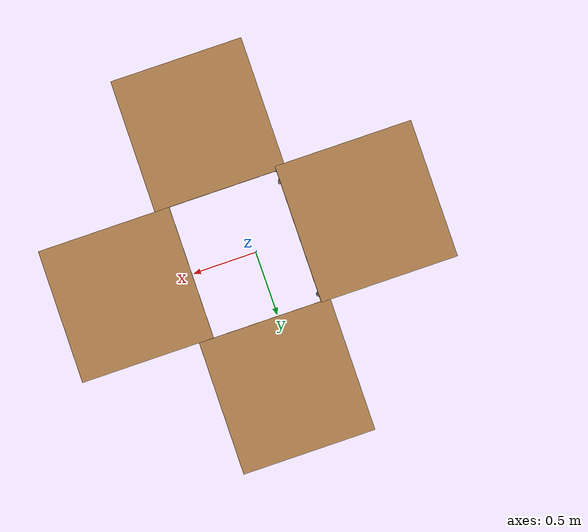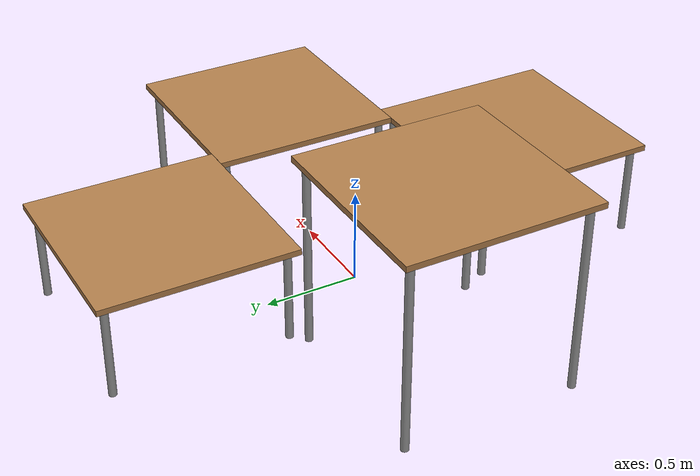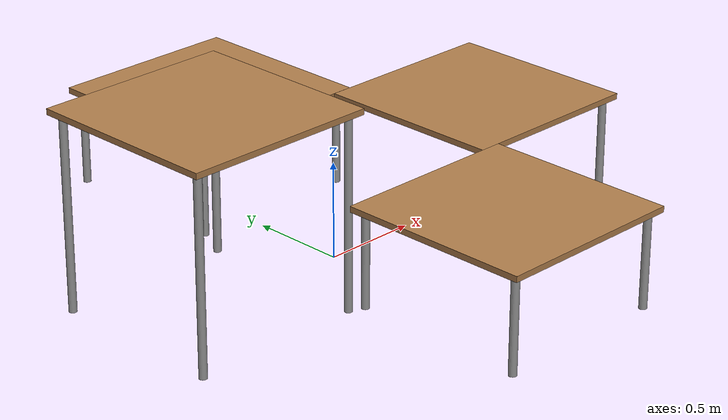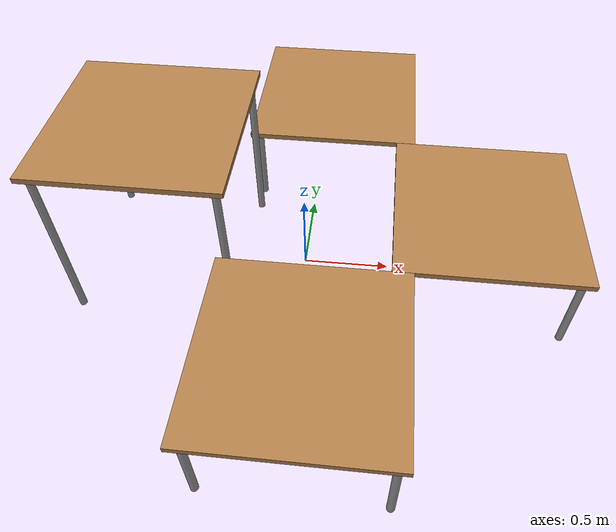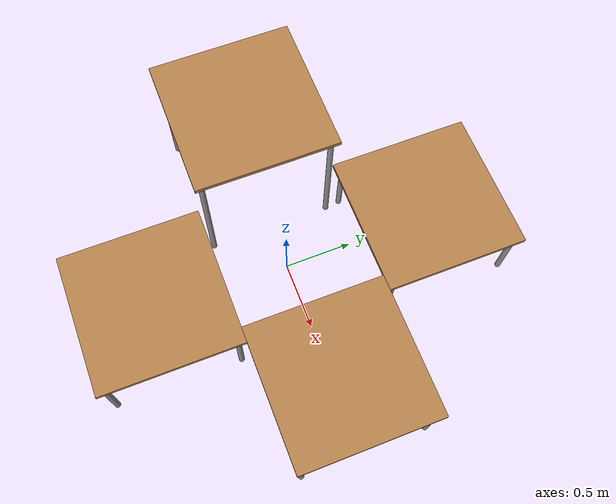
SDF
<sdf version="1.6">
 <world name="default">
  <plugin name="ros_link_attacher_plugin" filename="libgazebo_ros_link_attacher.so"/>
  <gravity>0 0 -9.8</gravity>
  <physics default="0" name="default_physics" type="ode">
   <max_step_size>0.001</max_step_size>
   <real_time_factor>1</real_time_factor>
   <real_time_update_rate>1000</real_time_update_rate>
  </physics>
  <model name="table">
   <include><uri>model://table</uri><pose>-0.8 0 0 0 0 1.5708</pose><static>true</static></include>
  </model>
  <model name="table_red_">
   <include><uri>model://custom_table</uri><pose>0.11 1 -0.2 0 0 0</pose><static>true</static></include>
  </model>
  <model name="table_blue_">
   <include><uri>model://custom_table</uri><pose>0.11 -1 -0.2 0 0 0</pose><static>true</static></include>
  </model>
  <model name="table_green_">
   <include><uri>model://custom_table</uri><pose>1 0 -0.2 0 0 -1.57</pose><static>true</static></include>
  </model>
  <light name="Warehouse_CeilingLight_003" type="point">
   <pose>0 0 5 0 0 0</pose>
   <diffuse>0.5 0.5 0.5 1</diffuse>
   <specular>0.2 0.2 0.2 1</specular>
   <attenuation>
    <range>80</range>
    <constant>0.1</constant>
    <linear>0.01</linear>
    <quadratic>0.001</quadratic>
   </attenuation>
   <direction>0 0 -1</direction>
  </light>
 </world>
</sdf>

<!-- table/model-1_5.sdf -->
<sdf version="1.5">
  <model name="custom_table">
    <static>true</static>
    <link name="link">
      <!-- Table Surface -->
      <collision name="surface">
        <pose>0 0 1.0 0 0 0</pose>
        <geometry>
          <box>
            <!-- 1m x 1m table surface -->
            <size>1.0 1.0 0.03</size>
          </box>
        </geometry>
        <surface>
          <friction>
            <ode>
              <mu>0.6</mu>
              <mu2>0.6</mu2>
            </ode>
          </friction>
        </surface>
      </collision>

      <visual name="visual1">
        <pose>0 0 1.0 0 0 0</pose>
        <geometry>
          <box>
            <!-- Match the collision dimensions - 1m x 1m -->
            <size>1.0 1.0 0.03</size>
          </box>
        </geometry>
        <material>
          <script>
            <uri>file://media/materials/scripts/gazebo.material</uri>
            <name>Gazebo/Wood</name>
          </script>
        </material>
      </visual>

      <!-- Table Legs - Positioned for 1m x 1m table -->
      <!-- Front left leg -->
      <collision name="front_left_leg">
        <pose>0.45 0.45 0.5 0 0 0</pose>
        <geometry>
          <cylinder>
            <radius>0.02</radius>
            <length>1.0</length>
          </cylinder>
        </geometry>
      </collision>
      <visual name="front_left_leg">
        <pose>0.45 0.45 0.5 0 0 0</pose>
        <geometry>
          <cylinder>
            <radius>0.02</radius>
            <length>1.0</length>
          </cylinder>
        </geometry>
        <material>
          <script>
            <uri>file://media/materials/scripts/gazebo.material</uri>
            <name>Gazebo/Grey</name>
          </script>
        </material>
      </visual>

      <!-- Front right leg -->
      <collision name="front_right_leg">
        <pose>0.45 -0.45 0.5 0 0 0</pose>
      <geometry>
          <cylinder>
            <radius>0.02</radius>
            <length>1.0</length>
          </cylinder>
        </geometry>
      </collision>
      <visual name="front_right_leg">
        <pose>0.45 -0.45 0.5 0 0 0</pose>
        <geometry>
          <cylinder>
            <radius>0.02</radius>
            <length>1.0</length>
          </cylinder>
        </geometry>
        <material>
          <script>
            <uri>file://media/materials/scripts/gazebo.material</uri>
            <name>Gazebo/Grey</name>
          </script>
        </material>
      </visual>

      <!-- Back right leg -->
      <collision name="back_right_leg">
        <pose>-0.45 -0.45 0.5 0 0 0</pose>
        <geometry>
          <cylinder>
            <radius>0.02</radius>
            <length>1.0</length>
          </cylinder>
        </geometry>
      </collision>
      <visual name="back_right_leg">
        <pose>-0.45 -0.45 0.5 0 0 0</pose>
        <geometry>
          <cylinder>
            <radius>0.02</radius>
            <length>1.0</length>
          </cylinder>
        </geometry>
        <material>
          <script>
            <uri>file://media/materials/scripts/gazebo.material</uri>
            <name>Gazebo/Grey</name>
          </script>
        </material>
      </visual>

      <!-- Back left leg -->
      <collision name="back_left_leg">
        <pose>-0.45 0.45 0.5 0 0 0</pose>
        <geometry>
          <cylinder>
            <radius>0.02</radius>
            <length>1.0</length>
          </cylinder>
        </geometry>
      </collision>
      <visual name="back_left_leg">
        <pose>-0.45 0.45 0.5 0 0 0</pose>
        <geometry>
          <cylinder>
            <radius>0.02</radius>
            <length>1.0</length>
          </cylinder>
        </geometry>
        <material>
          <script>
            <uri>file://media/materials/scripts/gazebo.material</uri>
            <name>Gazebo/Grey</name>
          </script>
        </material>
      </visual>
    </link>
  </model>
</sdf>

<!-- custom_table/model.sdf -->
<sdf version="1.5">
  <model name="custom_table">
    <static>true</static>
    <link name="link">
      <collision name="surface">
        <pose>0 0 0.75 0 0 0</pose>
        <geometry>
          <box>
            <size>1.0 1.0 0.03</size>
          </box>
        </geometry>
        <surface>
          <friction>
            <ode>
              <mu>0.6</mu>
              <mu2>0.6</mu2>
            </ode>
          </friction>
        </surface>
      </collision>
      <visual name="visual1">
        <pose>0 0 0.75 0 0 0</pose>
        <geometry>
          <box>
            <size>1.0 1.0 0.03</size>
          </box>
        </geometry>
        <material>
          <script>
            <uri>file://media/materials/scripts/gazebo.material</uri>
            <name>Gazebo/Wood</name>
          </script>
        </material>
      </visual>
      <collision name="front_left_leg">
        <pose>0.45 0.45 0.5 0 0 0</pose>
        <geometry>
          <cylinder>
            <radius>0.02</radius>
            <length>0.5</length>
          </cylinder>
        </geometry>
      </collision>
      <visual name="front_left_leg">
        <pose>0.45 0.45 0.5 0 0 0</pose>
        <geometry>
          <cylinder>
            <radius>0.02</radius>
            <length>0.5</length>
          </cylinder>
        </geometry>
        <material>
          <script>
            <uri>file://media/materials/scripts/gazebo.material</uri>
            <name>Gazebo/Grey</name>
          </script>
        </material>
      </visual>
      <collision name="front_right_leg">
        <pose>0.45 -0.45 0.5 0 0 0</pose>
        <geometry>
          <cylinder>
            <radius>0.02</radius>
            <length>0.5</length>
          </cylinder>
        </geometry>
      </collision>
      <visual name="front_right_leg">
        <pose>0.45 -0.45 0.5 0 0 0</pose>
        <geometry>
          <cylinder>
            <radius>0.02</radius>
            <length>0.5</length>
          </cylinder>
        </geometry>
        <material>
          <script>
            <uri>file://media/materials/scripts/gazebo.material</uri>
            <name>Gazebo/Grey</name>
          </script>
        </material>
      </visual>
      <collision name="back_right_leg">
        <pose>-0.45 -0.45 0.5 0 0 0</pose>
        <geometry>
          <cylinder>
            <radius>0.02</radius>
            <length>0.5</length>
          </cylinder>
        </geometry>
      </collision>
      <visual name="back_right_leg">
        <pose>-0.45 -0.45 0.5 0 0 0</pose>
        <geometry>
          <cylinder>
            <radius>0.02</radius>
            <length>0.5</length>
          </cylinder>
        </geometry>
        <material>
          <script>
            <uri>file://media/materials/scripts/gazebo.material</uri>
            <name>Gazebo/Grey</name>
          </script>
        </material>
      </visual>
      <collision name="back_left_leg">
        <pose>-0.45 0.45 0.5 0 0 0</pose>
        <geometry>
          <cylinder>
            <radius>0.02</radius>
            <length>0.5</length>
          </cylinder>
        </geometry>
      </collision>
      <visual name="back_left_leg">
        <pose>-0.45 0.45 0.5 0 0 0</pose>
        <geometry>
          <cylinder>
            <radius>0.02</radius>
            <length>0.5</length>
          </cylinder>
        </geometry>
        <material>
          <script>
            <uri>file://media/materials/scripts/gazebo.material</uri>
            <name>Gazebo/Grey</name>
          </script>
        </material>
      </visual>
    </link>
  </model>
</sdf>
